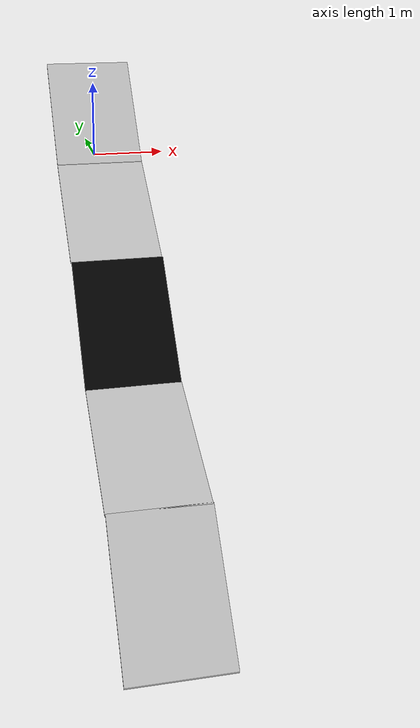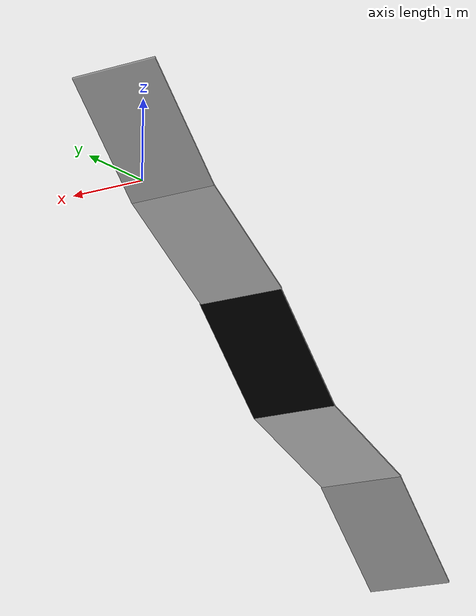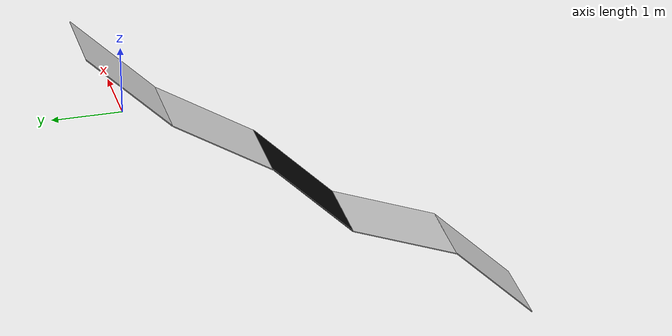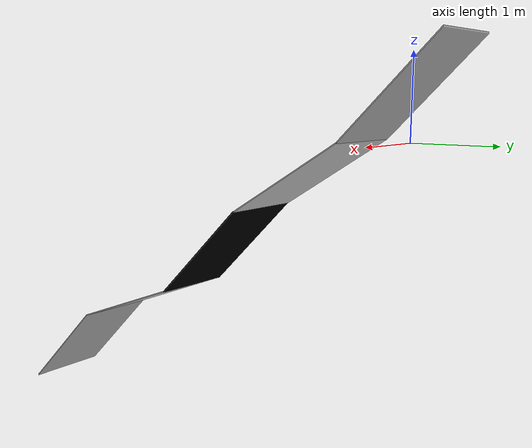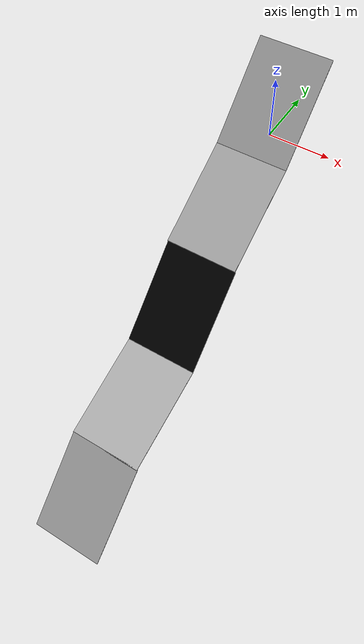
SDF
<?xml version='1.0'?>
<sdf version='1.7'>
  <!--first ramp: 12° second ramp: 30° -->
  <model name='nist_simple_ramp_LONGER'>
    <link name='nist_simple_ramp_120_link'>
      <pose>0 0 0 0 -0 0</pose>
      <self_collide>0</self_collide>
      <enable_wind>0</enable_wind>
      <kinematic>0</kinematic>
      <visual name='visual'>
        <geometry>
          <mesh>
            <uri>model://nist_simple_ramp_120/meshes/nist_simple_ramp_120.dae</uri>
            <scale>1 1 1</scale>
          </mesh>
        </geometry>
        <material>
          <shader type='pixel' />
        </material>
        <pose>0 0 0 0 -0 0</pose>
        <transparency>0</transparency>
        <cast_shadows>1</cast_shadows>
      </visual>
      <collision name='collision'>
        <laser_retro>0</laser_retro>
        <max_contacts>10</max_contacts>
        <pose>0 0 0 0 -0 0</pose>
        <geometry>
          <mesh>
            <uri>/home/cp/.gazebo/models/nist_simple_ramp_120/meshes/nist_simple_ramp_120.dae</uri>
            <scale>1 1 1</scale>
          </mesh>
        </geometry>
        <surface>
          <friction>
            <ode>
              <mu>1</mu>
              <mu2>1</mu2>
              <fdir1>0 0 0</fdir1>
              <slip1>0</slip1>
              <slip2>0</slip2>
            </ode>
            <torsional>
              <coefficient>1</coefficient>
              <patch_radius>0</patch_radius>
              <surface_radius>0</surface_radius>
              <use_patch_radius>1</use_patch_radius>
              <ode>
                <slip>0</slip>
              </ode>
            </torsional>
          </friction>
          <bounce>
            <restitution_coefficient>0</restitution_coefficient>
            <threshold>1e+06</threshold>
          </bounce>
          <contact>
            <collide_without_contact>0</collide_without_contact>
            <collide_without_contact_bitmask>1</collide_without_contact_bitmask>
            <collide_bitmask>1</collide_bitmask>
            <ode>
              <soft_cfm>0</soft_cfm>
              <soft_erp>0.2</soft_erp>
              <kp>1e+13</kp>
              <kd>1</kd>
              <max_vel>0.01</max_vel>
              <min_depth>0</min_depth>
            </ode>
            <bullet>
              <split_impulse>1</split_impulse>
              <split_impulse_penetration_threshold>-0.01</split_impulse_penetration_threshold>
              <soft_cfm>0</soft_cfm>
              <soft_erp>0.2</soft_erp>
              <kp>1e+13</kp>
              <kd>1</kd>
            </bullet>
          </contact>
        </surface>
      </collision>
    </link>
    <link name='nist_simple_ramp_120_link_clone'>
      <pose>-0.000385 -1.44094 -1.0206 -0.228258 0 0</pose>
      <self_collide>0</self_collide>
      <enable_wind>0</enable_wind>
      <kinematic>0</kinematic>
      <visual name='visual'>
        <geometry>
          <mesh>
            <uri>model://nist_simple_ramp_120/meshes/nist_simple_ramp_120.dae</uri>
            <scale>1 1 1</scale>
          </mesh>
        </geometry>
        <material>
          <shader type='pixel' />
        </material>
        <pose>0 0 0 0 -0 0</pose>
        <transparency>0</transparency>
        <cast_shadows>1</cast_shadows>
      </visual>
      <collision name='collision'>
        <laser_retro>0</laser_retro>
        <max_contacts>10</max_contacts>
        <pose>0 0 0 0 -0 0</pose>
        <geometry>
          <mesh>
            <uri>/home/cp/.gazebo/models/nist_simple_ramp_120/meshes/nist_simple_ramp_120.dae</uri>
            <scale>1 1 1</scale>
          </mesh>
        </geometry>
        <surface>
          <friction>
            <ode>
              <mu>1</mu>
              <mu2>1</mu2>
              <fdir1>0 0 0</fdir1>
              <slip1>0</slip1>
              <slip2>0</slip2>
            </ode>
            <torsional>
              <coefficient>1</coefficient>
              <patch_radius>0</patch_radius>
              <surface_radius>0</surface_radius>
              <use_patch_radius>1</use_patch_radius>
              <ode>
                <slip>0</slip>
              </ode>
            </torsional>
          </friction>
          <bounce>
            <restitution_coefficient>0</restitution_coefficient>
            <threshold>1e+06</threshold>
          </bounce>
          <contact>
            <collide_without_contact>0</collide_without_contact>
            <collide_without_contact_bitmask>1</collide_without_contact_bitmask>
            <collide_bitmask>1</collide_bitmask>
            <ode>
              <soft_cfm>0</soft_cfm>
              <soft_erp>0.2</soft_erp>
              <kp>1e+13</kp>
              <kd>1</kd>
              <max_vel>0.01</max_vel>
              <min_depth>0</min_depth>
            </ode>
            <bullet>
              <split_impulse>1</split_impulse>
              <split_impulse_penetration_threshold>-0.01</split_impulse_penetration_threshold>
              <soft_cfm>0</soft_cfm>
              <soft_erp>0.2</soft_erp>
              <kp>1e+13</kp>
              <kd>1</kd>
            </bullet>
          </contact>
        </surface>
      </collision>
    </link>
    <link name='nist_simple_ramp_120_link_clone_0'>
      <pose>0.011456 -2.60372 -2.06883 0.001607 -0 0</pose>
      <self_collide>0</self_collide>
      <enable_wind>0</enable_wind>
      <kinematic>0</kinematic>
      <gravity>1</gravity>
      <inertial>
        <mass>1</mass>
        <pose>0 0 0 0 -0 0</pose>
        <inertia>
          <ixx>1</ixx>
          <ixy>0</ixy>
          <ixz>0</ixz>
          <iyy>1</iyy>
          <iyz>0</iyz>
          <izz>1</izz>
        </inertia>
      </inertial>
      <visual name='visual'>
        <geometry>
          <mesh>
            <uri>model://nist_simple_ramp_120/meshes/nist_simple_ramp_120.dae</uri>
            <scale>1 1 1</scale>
          </mesh>
        </geometry>
        <material>
          <shader type='pixel'>
            <normal_map>__default__</normal_map>
          </shader>
          <script>
            <name>ModelPreview_16::nist_simple_ramp_120_link_clone_0::visual_MATERIAL_</name>
            <uri>__default__</uri>
          </script>
          <ambient>0 0 0 1</ambient>
          <diffuse>0 0 0 1</diffuse>
          <specular>0 0 0 1</specular>
          <emissive>0 0 0 1</emissive>
        </material>
        <pose>0 0 0 0 -0 0</pose>
        <transparency>0</transparency>
        <cast_shadows>1</cast_shadows>
      </visual>
      <collision name='collision'>
        <laser_retro>0</laser_retro>
        <max_contacts>10</max_contacts>
        <pose>0 0 0 0 -0 0</pose>
        <geometry>
          <mesh>
            <uri>/home/cp/.gazebo/models/nist_simple_ramp_120/meshes/nist_simple_ramp_120.dae</uri>
            <scale>1 1 1</scale>
          </mesh>
        </geometry>
        <surface>
          <friction>
            <ode>
              <mu>1</mu>
              <mu2>1</mu2>
              <fdir1>0 0 0</fdir1>
              <slip1>0</slip1>
              <slip2>0</slip2>
            </ode>
            <torsional>
              <coefficient>1</coefficient>
              <patch_radius>0</patch_radius>
              <surface_radius>0</surface_radius>
              <use_patch_radius>1</use_patch_radius>
              <ode>
                <slip>0</slip>
              </ode>
            </torsional>
          </friction>
          <bounce>
            <restitution_coefficient>0</restitution_coefficient>
            <threshold>1e+06</threshold>
          </bounce>
          <contact>
            <collide_without_contact>0</collide_without_contact>
            <collide_without_contact_bitmask>1</collide_without_contact_bitmask>
            <collide_bitmask>1</collide_bitmask>
            <ode>
              <soft_cfm>0</soft_cfm>
              <soft_erp>0.2</soft_erp>
              <kp>1e+13</kp>
              <kd>1</kd>
              <max_vel>0.01</max_vel>
              <min_depth>0</min_depth>
            </ode>
            <bullet>
              <split_impulse>1</split_impulse>
              <split_impulse_penetration_threshold>-0.01</split_impulse_penetration_threshold>
              <soft_cfm>0</soft_cfm>
              <soft_erp>0.2</soft_erp>
              <kp>1e+13</kp>
              <kd>1</kd>
            </bullet>
          </contact>
        </surface>
      </collision>
    </link>
    <link name='nist_simple_ramp_120_link_clone_clone'>
      <pose>0.010361 -3.73055 -1.80967 2.72146 -0.000195 -0.005038</pose>
      <self_collide>0</self_collide>
      <enable_wind>0</enable_wind>
      <kinematic>0</kinematic>
      <visual name='visual'>
        <geometry>
          <mesh>
            <uri>model://nist_simple_ramp_120/meshes/nist_simple_ramp_120.dae</uri>
            <scale>1 1 1</scale>
          </mesh>
        </geometry>
        <material>
          <shader type='pixel' />
        </material>
        <pose>0 0 0 0 -0 0</pose>
        <transparency>0</transparency>
        <cast_shadows>1</cast_shadows>
      </visual>
      <collision name='collision'>
        <laser_retro>0</laser_retro>
        <max_contacts>10</max_contacts>
        <pose>0 0 0 0 -0 0</pose>
        <geometry>
          <mesh>
            <uri>/home/cp/.gazebo/models/nist_simple_ramp_120/meshes/nist_simple_ramp_120.dae</uri>
            <scale>1 1 1</scale>
          </mesh>
        </geometry>
        <surface>
          <friction>
            <ode>
              <mu>1</mu>
              <mu2>1</mu2>
              <fdir1>0 0 0</fdir1>
              <slip1>0</slip1>
              <slip2>0</slip2>
            </ode>
            <torsional>
              <coefficient>1</coefficient>
              <patch_radius>0</patch_radius>
              <surface_radius>0</surface_radius>
              <use_patch_radius>1</use_patch_radius>
              <ode>
                <slip>0</slip>
              </ode>
            </torsional>
          </friction>
          <bounce>
            <restitution_coefficient>0</restitution_coefficient>
            <threshold>1e+06</threshold>
          </bounce>
          <contact>
            <collide_without_contact>0</collide_without_contact>
            <collide_without_contact_bitmask>1</collide_without_contact_bitmask>
            <collide_bitmask>1</collide_bitmask>
            <ode>
              <soft_cfm>0</soft_cfm>
              <soft_erp>0.2</soft_erp>
              <kp>1e+13</kp>
              <kd>1</kd>
              <max_vel>0.01</max_vel>
              <min_depth>0</min_depth>
            </ode>
            <bullet>
              <split_impulse>1</split_impulse>
              <split_impulse_penetration_threshold>-0.01</split_impulse_penetration_threshold>
              <soft_cfm>0</soft_cfm>
              <soft_erp>0.2</soft_erp>
              <kp>1e+13</kp>
              <kd>1</kd>
            </bullet>
          </contact>
        </surface>
      </collision>
    </link>
    <link name='nist_simple_ramp_120_link_clone_clone_0'>
      <pose>0.007403 -5.34067 -3.83719 -0.005486 0.004274 -0.001533</pose>
      <self_collide>0</self_collide>
      <enable_wind>0</enable_wind>
      <kinematic>0</kinematic>
      <visual name='visual'>
        <geometry>
          <mesh>
            <uri>model://nist_simple_ramp_120/meshes/nist_simple_ramp_120.dae</uri>
            <scale>1 1 1</scale>
          </mesh>
        </geometry>
        <material>
          <shader type='pixel' />
        </material>
        <pose>0 0 0 0 -0 0</pose>
        <transparency>0</transparency>
        <cast_shadows>1</cast_shadows>
      </visual>
      <collision name='collision'>
        <laser_retro>0</laser_retro>
        <max_contacts>10</max_contacts>
        <pose>0 0 0 0 -0 0</pose>
        <geometry>
          <mesh>
            <uri>/home/cp/.gazebo/models/nist_simple_ramp_120/meshes/nist_simple_ramp_120.dae</uri>
            <scale>1 1 1</scale>
          </mesh>
        </geometry>
        <surface>
          <friction>
            <ode>
              <mu>1</mu>
              <mu2>1</mu2>
              <fdir1>0 0 0</fdir1>
              <slip1>0</slip1>
              <slip2>0</slip2>
            </ode>
            <torsional>
              <coefficient>1</coefficient>
              <patch_radius>0</patch_radius>
              <surface_radius>0</surface_radius>
              <use_patch_radius>1</use_patch_radius>
              <ode>
                <slip>0</slip>
              </ode>
            </torsional>
          </friction>
          <bounce>
            <restitution_coefficient>0</restitution_coefficient>
            <threshold>1e+06</threshold>
          </bounce>
          <contact>
            <collide_without_contact>0</collide_without_contact>
            <collide_without_contact_bitmask>1</collide_without_contact_bitmask>
            <collide_bitmask>1</collide_bitmask>
            <ode>
              <soft_cfm>0</soft_cfm>
              <soft_erp>0.2</soft_erp>
              <kp>1e+13</kp>
              <kd>1</kd>
              <max_vel>0.01</max_vel>
              <min_depth>0</min_depth>
            </ode>
            <bullet>
              <split_impulse>1</split_impulse>
              <split_impulse_penetration_threshold>-0.01</split_impulse_penetration_threshold>
              <soft_cfm>0</soft_cfm>
              <soft_erp>0.2</soft_erp>
              <kp>1e+13</kp>
              <kd>1</kd>
            </bullet>
          </contact>
        </surface>
      </collision>
    </link>
    <static>1</static>
    <allow_auto_disable>1</allow_auto_disable>
  </model>
</sdf>
